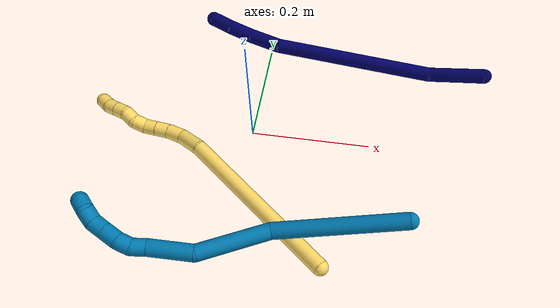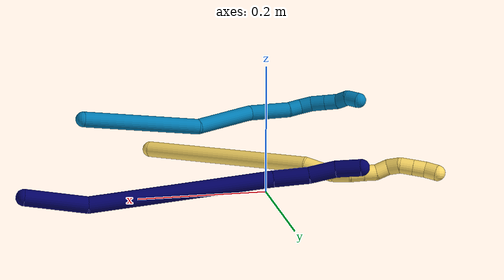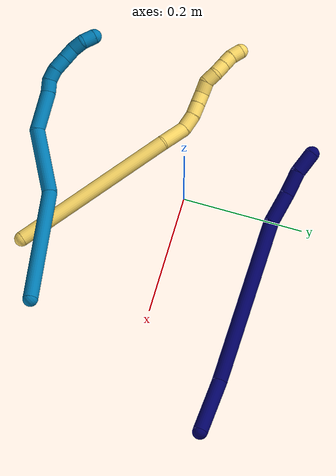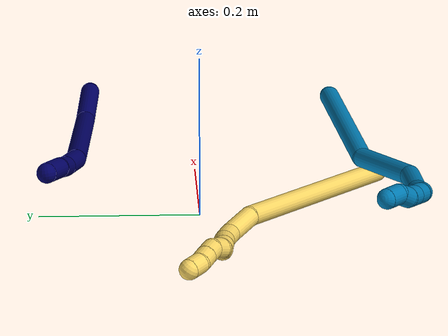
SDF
<sdf version="1.7">
 <world name="default">
  <model name="5">
   <static>0</static>
   <link name="5">
    <collision name="collision-cylinder-e_1_1_4">
     <pose>-0.10911 0.083126 0.032412 -1.19902 -0.885342 0.626605</pose>
     <geometry><cylinder><radius>0.0125</radius><length>0.28189</length></cylinder></geometry>
     <surface>
      <friction><ode><mu>1.16</mu><mu2>1.16</mu2><slip1>0</slip1><slip2>0</slip2></ode></friction>
      <contact><ode><kp>1e+06</kp><kd>1</kd><max_vel>0</max_vel><min_depth>0.001</min_depth></ode></contact>
     </surface>
    </collision>
    <visual name="visual-cylinder-e_1_1_4">
     <pose>-0.10911 0.083126 0.032412 -1.19902 -0.885342 0.626605</pose>
     <geometry><cylinder><radius>0.0125</radius><length>0.28189</length></cylinder></geometry>
     <material><ambient>1 0.858824 0.4 1</ambient></material>
    </visual>
    <collision name="collision-cylinder-e_2_4_5">
     <pose>-0.23211 0.181861 0.074274 -1.02636 -0.650648 0.375692</pose>
     <geometry><cylinder><radius>0.0125</radius><length>0.045864</length></cylinder></geometry>
     <surface>
      <friction><ode><mu>1.16</mu><mu2>1.16</mu2><slip1>0</slip1><slip2>0</slip2></ode></friction>
      <contact><ode><kp>1e+06</kp><kd>1</kd><max_vel>0</max_vel><min_depth>0.001</min_depth></ode></contact>
     </surface>
    </collision>
    <visual name="visual-cylinder-e_2_4_5">
     <pose>-0.23211 0.181861 0.074274 -1.02636 -0.650648 0.375692</pose>
     <geometry><cylinder><radius>0.0125</radius><length>0.045864</length></cylinder></geometry>
     <material><ambient>1 0.858824 0.4 1</ambient></material>
    </visual>
    <collision name="collision-cylinder-e_3_5_6">
     <pose>-0.25353 0.209138 0.084698 -1.48757 -0.571549 0.528035</pose>
     <geometry><cylinder><radius>0.0125</radius><length>0.027842</length></cylinder></geometry>
     <surface>
      <friction><ode><mu>1.16</mu><mu2>1.16</mu2><slip1>0</slip1><slip2>0</slip2></ode></friction>
      <contact><ode><kp>1e+06</kp><kd>1</kd><max_vel>0</max_vel><min_depth>0.001</min_depth></ode></contact>
     </surface>
    </collision>
    <visual name="visual-cylinder-e_3_5_6">
     <pose>-0.25353 0.209138 0.084698 -1.48757 -0.571549 0.528035</pose>
     <geometry><cylinder><radius>0.0125</radius><length>0.027842</length></cylinder></geometry>
     <material><ambient>1 0.858824 0.4 1</ambient></material>
    </visual>
    <collision name="collision-cylinder-e_4_6_7">
     <pose>-0.265589 0.230803 0.084804 -1.6573 -0.4239 0.460959</pose>
     <geometry><cylinder><radius>0.0125</radius><length>0.022018</length></cylinder></geometry>
     <surface>
      <friction><ode><mu>1.16</mu><mu2>1.16</mu2><slip1>0</slip1><slip2>0</slip2></ode></friction>
      <contact><ode><kp>1e+06</kp><kd>1</kd><max_vel>0</max_vel><min_depth>0.001</min_depth></ode></contact>
     </surface>
    </collision>
    <visual name="visual-cylinder-e_4_6_7">
     <pose>-0.265589 0.230803 0.084804 -1.6573 -0.4239 0.460959</pose>
     <geometry><cylinder><radius>0.0125</radius><length>0.022018</length></cylinder></geometry>
     <material><ambient>1 0.858824 0.4 1</ambient></material>
    </visual>
    <collision name="collision-cylinder-e_5_7_8">
     <pose>-0.274215 0.250033 0.083394 -1.62962 -0.417134 0.441632</pose>
     <geometry><cylinder><radius>0.0125</radius><length>0.020233</length></cylinder></geometry>
     <surface>
      <friction><ode><mu>1.16</mu><mu2>1.16</mu2><slip1>0</slip1><slip2>0</slip2></ode></friction>
      <contact><ode><kp>1e+06</kp><kd>1</kd><max_vel>0</max_vel><min_depth>0.001</min_depth></ode></contact>
     </surface>
    </collision>
    <visual name="visual-cylinder-e_5_7_8">
     <pose>-0.274215 0.250033 0.083394 -1.62962 -0.417134 0.441632</pose>
     <geometry><cylinder><radius>0.0125</radius><length>0.020233</length></cylinder></geometry>
     <material><ambient>1 0.858824 0.4 1</ambient></material>
    </visual>
    <collision name="collision-cylinder-e_6_8_9">
     <pose>-0.284268 0.267172 0.079095 -2.01422 -0.597374 0.906558</pose>
     <geometry><cylinder><radius>0.0125</radius><length>0.02117</length></cylinder></geometry>
     <surface>
      <friction><ode><mu>1.16</mu><mu2>1.16</mu2><slip1>0</slip1><slip2>0</slip2></ode></friction>
      <contact><ode><kp>1e+06</kp><kd>1</kd><max_vel>0</max_vel><min_depth>0.001</min_depth></ode></contact>
     </surface>
    </collision>
    <visual name="visual-cylinder-e_6_8_9">
     <pose>-0.284268 0.267172 0.079095 -2.01422 -0.597374 0.906558</pose>
     <geometry><cylinder><radius>0.0125</radius><length>0.02117</length></cylinder></geometry>
     <material><ambient>1 0.858824 0.4 1</ambient></material>
    </visual>
    <collision name="collision-cylinder-e_7_9_10">
     <pose>-0.298539 0.280983 0.075393 -1.56194 -0.953295 0.946088</pose>
     <geometry><cylinder><radius>0.0125</radius><length>0.020402</length></cylinder></geometry>
     <surface>
      <friction><ode><mu>1.16</mu><mu2>1.16</mu2><slip1>0</slip1><slip2>0</slip2></ode></friction>
      <contact><ode><kp>1e+06</kp><kd>1</kd><max_vel>0</max_vel><min_depth>0.001</min_depth></ode></contact>
     </surface>
    </collision>
    <visual name="visual-cylinder-e_7_9_10">
     <pose>-0.298539 0.280983 0.075393 -1.56194 -0.953295 0.946088</pose>
     <geometry><cylinder><radius>0.0125</radius><length>0.020402</length></cylinder></geometry>
     <material><ambient>1 0.858824 0.4 1</ambient></material>
    </visual>
    <collision name="collision-cylinder-e_8_10_11">
     <pose>-0.312499 0.295144 0.077757 -1.29776 -0.582165 0.446856</pose>
     <geometry><cylinder><radius>0.0125</radius><length>0.020526</length></cylinder></geometry>
     <surface>
      <friction><ode><mu>1.16</mu><mu2>1.16</mu2><slip1>0</slip1><slip2>0</slip2></ode></friction>
      <contact><ode><kp>1e+06</kp><kd>1</kd><max_vel>0</max_vel><min_depth>0.001</min_depth></ode></contact>
     </surface>
    </collision>
    <visual name="visual-cylinder-e_8_10_11">
     <pose>-0.312499 0.295144 0.077757 -1.29776 -0.582165 0.446856</pose>
     <geometry><cylinder><radius>0.0125</radius><length>0.020526</length></cylinder></geometry>
     <material><ambient>1 0.858824 0.4 1</ambient></material>
    </visual>
    <collision name="collision-cylinder-e_9_11_12">
     <pose>-0.323538 0.311515 0.082394 -1.29174 -0.568667 0.433619</pose>
     <geometry><cylinder><radius>0.0125</radius><length>0.020038</length></cylinder></geometry>
     <surface>
      <friction><ode><mu>1.16</mu><mu2>1.16</mu2><slip1>0</slip1><slip2>0</slip2></ode></friction>
      <contact><ode><kp>1e+06</kp><kd>1</kd><max_vel>0</max_vel><min_depth>0.001</min_depth></ode></contact>
     </surface>
    </collision>
    <visual name="visual-cylinder-e_9_11_12">
     <pose>-0.323538 0.311515 0.082394 -1.29174 -0.568667 0.433619</pose>
     <geometry><cylinder><radius>0.0125</radius><length>0.020038</length></cylinder></geometry>
     <material><ambient>1 0.858824 0.4 1</ambient></material>
    </visual>
    <collision name="collision-cylinder-e_10_12_2">
     <pose>-0.335865 0.325775 0.08851 -1.01795 -0.765115 0.441741</pose>
     <geometry><cylinder><radius>0.0125</radius><length>0.020016</length></cylinder></geometry>
     <surface>
      <friction><ode><mu>1.16</mu><mu2>1.16</mu2><slip1>0</slip1><slip2>0</slip2></ode></friction>
      <contact><ode><kp>1e+06</kp><kd>1</kd><max_vel>0</max_vel><min_depth>0.001</min_depth></ode></contact>
     </surface>
    </collision>
    <visual name="visual-cylinder-e_10_12_2">
     <pose>-0.335865 0.325775 0.08851 -1.01795 -0.765115 0.441741</pose>
     <geometry><cylinder><radius>0.0125</radius><length>0.020016</length></cylinder></geometry>
     <material><ambient>1 0.858824 0.4 1</ambient></material>
    </visual>
    <collision name="collision-sphere-2">
     <pose>-0.342797 0.331918 0.092301 0 -0 0</pose>
     <geometry><sphere><radius>0.0125</radius></sphere></geometry>
     <surface>
      <friction><ode><mu>1.16</mu><mu2>1.16</mu2><slip1>0</slip1><slip2>0</slip2></ode></friction>
      <contact><ode><kp>1e+06</kp><kd>1</kd><max_vel>0</max_vel><min_depth>0.001</min_depth></ode></contact>
     </surface>
    </collision>
    <visual name="visual-sphere-2">
     <pose>-0.342797 0.331918 0.092301 0 -0 0</pose>
     <geometry><sphere><radius>0.0125</radius></sphere></geometry>
     <material><ambient>1 0.858824 0.4 1</ambient></material>
    </visual>
    <collision name="collision-sphere-12">
     <pose>-0.328933 0.319631 0.084719 0 -0 0</pose>
     <geometry><sphere><radius>0.0125</radius></sphere></geometry>
     <surface>
      <friction><ode><mu>1.16</mu><mu2>1.16</mu2><slip1>0</slip1><slip2>0</slip2></ode></friction>
      <contact><ode><kp>1e+06</kp><kd>1</kd><max_vel>0</max_vel><min_depth>0.001</min_depth></ode></contact>
     </surface>
    </collision>
    <visual name="visual-sphere-12">
     <pose>-0.328933 0.319631 0.084719 0 -0 0</pose>
     <geometry><sphere><radius>0.0125</radius></sphere></geometry>
     <material><ambient>1 0.858824 0.4 1</ambient></material>
    </visual>
    <collision name="collision-sphere-11">
     <pose>-0.318142 0.3034 0.080068 0 -0 0</pose>
     <geometry><sphere><radius>0.0125</radius></sphere></geometry>
     <surface>
      <friction><ode><mu>1.16</mu><mu2>1.16</mu2><slip1>0</slip1><slip2>0</slip2></ode></friction>
      <contact><ode><kp>1e+06</kp><kd>1</kd><max_vel>0</max_vel><min_depth>0.001</min_depth></ode></contact>
     </surface>
    </collision>
    <visual name="visual-sphere-11">
     <pose>-0.318142 0.3034 0.080068 0 -0 0</pose>
     <geometry><sphere><radius>0.0125</radius></sphere></geometry>
     <material><ambient>1 0.858824 0.4 1</ambient></material>
    </visual>
    <collision name="collision-sphere-10">
     <pose>-0.306856 0.286889 0.075445 0 -0 0</pose>
     <geometry><sphere><radius>0.0125</radius></sphere></geometry>
     <surface>
      <friction><ode><mu>1.16</mu><mu2>1.16</mu2><slip1>0</slip1><slip2>0</slip2></ode></friction>
      <contact><ode><kp>1e+06</kp><kd>1</kd><max_vel>0</max_vel><min_depth>0.001</min_depth></ode></contact>
     </surface>
    </collision>
    <visual name="visual-sphere-10">
     <pose>-0.306856 0.286889 0.075445 0 -0 0</pose>
     <geometry><sphere><radius>0.0125</radius></sphere></geometry>
     <material><ambient>1 0.858824 0.4 1</ambient></material>
    </visual>
    <collision name="collision-sphere-9">
     <pose>-0.290221 0.275077 0.07534 0 -0 0</pose>
     <geometry><sphere><radius>0.0125</radius></sphere></geometry>
     <surface>
      <friction><ode><mu>1.16</mu><mu2>1.16</mu2><slip1>0</slip1><slip2>0</slip2></ode></friction>
      <contact><ode><kp>1e+06</kp><kd>1</kd><max_vel>0</max_vel><min_depth>0.001</min_depth></ode></contact>
     </surface>
    </collision>
    <visual name="visual-sphere-9">
     <pose>-0.290221 0.275077 0.07534 0 -0 0</pose>
     <geometry><sphere><radius>0.0125</radius></sphere></geometry>
     <material><ambient>1 0.858824 0.4 1</ambient></material>
    </visual>
    <collision name="collision-sphere-4">
     <pose>-0.21822 0.166253 0.064823 0 -0 0</pose>
     <geometry><sphere><radius>0.0125</radius></sphere></geometry>
     <surface>
      <friction><ode><mu>1.16</mu><mu2>1.16</mu2><slip1>0</slip1><slip2>0</slip2></ode></friction>
      <contact><ode><kp>1e+06</kp><kd>1</kd><max_vel>0</max_vel><min_depth>0.001</min_depth></ode></contact>
     </surface>
    </collision>
    <visual name="visual-sphere-4">
     <pose>-0.21822 0.166253 0.064823 0 -0 0</pose>
     <geometry><sphere><radius>0.0125</radius></sphere></geometry>
     <material><ambient>1 0.858824 0.4 1</ambient></material>
    </visual>
    <collision name="collision-sphere-1">
     <geometry><sphere><radius>0.0125</radius></sphere></geometry>
     <surface>
      <friction><ode><mu>1.16</mu><mu2>1.16</mu2><slip1>0</slip1><slip2>0</slip2></ode></friction>
      <contact><ode><kp>1e+06</kp><kd>1</kd><max_vel>0</max_vel><min_depth>0.001</min_depth></ode></contact>
     </surface>
    </collision>
    <visual name="visual-sphere-1">
     <geometry><sphere><radius>0.0125</radius></sphere></geometry>
     <material><ambient>1 0.858824 0.4 1</ambient></material>
    </visual>
    <collision name="collision-sphere-8">
     <pose>-0.278314 0.259266 0.08285 0 -0 0</pose>
     <geometry><sphere><radius>0.0125</radius></sphere></geometry>
     <surface>
      <friction><ode><mu>1.16</mu><mu2>1.16</mu2><slip1>0</slip1><slip2>0</slip2></ode></friction>
      <contact><ode><kp>1e+06</kp><kd>1</kd><max_vel>0</max_vel><min_depth>0.001</min_depth></ode></contact>
     </surface>
    </collision>
    <visual name="visual-sphere-8">
     <pose>-0.278314 0.259266 0.08285 0 -0 0</pose>
     <geometry><sphere><radius>0.0125</radius></sphere></geometry>
     <material><ambient>1 0.858824 0.4 1</ambient></material>
    </visual>
    <collision name="collision-sphere-5">
     <pose>-0.246 0.19747 0.083725 0 -0 0</pose>
     <geometry><sphere><radius>0.0125</radius></sphere></geometry>
     <surface>
      <friction><ode><mu>1.16</mu><mu2>1.16</mu2><slip1>0</slip1><slip2>0</slip2></ode></friction>
      <contact><ode><kp>1e+06</kp><kd>1</kd><max_vel>0</max_vel><min_depth>0.001</min_depth></ode></contact>
     </surface>
    </collision>
    <visual name="visual-sphere-5">
     <pose>-0.246 0.19747 0.083725 0 -0 0</pose>
     <geometry><sphere><radius>0.0125</radius></sphere></geometry>
     <material><ambient>1 0.858824 0.4 1</ambient></material>
    </visual>
    <collision name="collision-sphere-6">
     <pose>-0.26106 0.220806 0.085671 0 -0 0</pose>
     <geometry><sphere><radius>0.0125</radius></sphere></geometry>
     <surface>
      <friction><ode><mu>1.16</mu><mu2>1.16</mu2><slip1>0</slip1><slip2>0</slip2></ode></friction>
      <contact><ode><kp>1e+06</kp><kd>1</kd><max_vel>0</max_vel><min_depth>0.001</min_depth></ode></contact>
     </surface>
    </collision>
    <visual name="visual-sphere-6">
     <pose>-0.26106 0.220806 0.085671 0 -0 0</pose>
     <geometry><sphere><radius>0.0125</radius></sphere></geometry>
     <material><ambient>1 0.858824 0.4 1</ambient></material>
    </visual>
    <collision name="collision-sphere-7">
     <pose>-0.270117 0.2408 0.083937 0 -0 0</pose>
     <geometry><sphere><radius>0.0125</radius></sphere></geometry>
     <surface>
      <friction><ode><mu>1.16</mu><mu2>1.16</mu2><slip1>0</slip1><slip2>0</slip2></ode></friction>
      <contact><ode><kp>1e+06</kp><kd>1</kd><max_vel>0</max_vel><min_depth>0.001</min_depth></ode></contact>
     </surface>
    </collision>
    <visual name="visual-sphere-7">
     <pose>-0.270117 0.2408 0.083937 0 -0 0</pose>
     <geometry><sphere><radius>0.0125</radius></sphere></geometry>
     <material><ambient>1 0.858824 0.4 1</ambient></material>
    </visual>
    <inertial>
     <pose>-0.183173 0.155894 0.053374 0 -0 0</pose>
     <mass>0.5</mass>
     <inertia><ixx>0.001658</ixx><ixy>0</ixy><ixz>0</ixz><iyy>0.00209</iyy><iyz>0</iyz><izz>0.00035</izz></inertia>
    </inertial>
   </link>
   <pose>0.143359 -0.233572 0.011498 -2.87127 0.499623 -1.20209</pose>
  </model>
  <model name="7">
   <static>0</static>
   <link name="7">
    <collision name="collision-cylinder-e_1_1_4">
     <pose>-0.043847 -0.000308 -0.016644 3.12307 -1.20795 -3.11475</pose>
     <geometry><cylinder><radius>0.0125</radius><length>0.093802</length></cylinder></geometry>
     <surface>
      <friction><ode><mu>1.16</mu><mu2>1.16</mu2><slip1>0</slip1><slip2>0</slip2></ode></friction>
      <contact><ode><kp>1e+06</kp><kd>1</kd><max_vel>0</max_vel><min_depth>0.001</min_depth></ode></contact>
     </surface>
    </collision>
    <visual name="visual-cylinder-e_1_1_4">
     <pose>-0.043847 -0.000308 -0.016644 3.12307 -1.20795 -3.11475</pose>
     <geometry><cylinder><radius>0.0125</radius><length>0.093802</length></cylinder></geometry>
     <material><ambient>0.003922 0 0.403922 1</ambient></material>
    </visual>
    <collision name="collision-cylinder-e_2_4_5">
     <pose>-0.223691 -0.011566 -0.048712 2.52427 -1.4326 -2.4394</pose>
     <geometry><cylinder><radius>0.0125</radius><length>0.274611</length></cylinder></geometry>
     <surface>
      <friction><ode><mu>1.16</mu><mu2>1.16</mu2><slip1>0</slip1><slip2>0</slip2></ode></friction>
      <contact><ode><kp>1e+06</kp><kd>1</kd><max_vel>0</max_vel><min_depth>0.001</min_depth></ode></contact>
     </surface>
    </collision>
    <visual name="visual-cylinder-e_2_4_5">
     <pose>-0.223691 -0.011566 -0.048712 2.52427 -1.4326 -2.4394</pose>
     <geometry><cylinder><radius>0.0125</radius><length>0.274611</length></cylinder></geometry>
     <material><ambient>0.003922 0 0.403922 1</ambient></material>
    </visual>
    <collision name="collision-cylinder-e_3_5_6">
     <pose>-0.386155 -0.019599 -0.065764 -2.0798 -1.44529 1.96672</pose>
     <geometry><cylinder><radius>0.0125</radius><length>0.053354</length></cylinder></geometry>
     <surface>
      <friction><ode><mu>1.16</mu><mu2>1.16</mu2><slip1>0</slip1><slip2>0</slip2></ode></friction>
      <contact><ode><kp>1e+06</kp><kd>1</kd><max_vel>0</max_vel><min_depth>0.001</min_depth></ode></contact>
     </surface>
    </collision>
    <visual name="visual-cylinder-e_3_5_6">
     <pose>-0.386155 -0.019599 -0.065764 -2.0798 -1.44529 1.96672</pose>
     <geometry><cylinder><radius>0.0125</radius><length>0.053354</length></cylinder></geometry>
     <material><ambient>0.003922 0 0.403922 1</ambient></material>
    </visual>
    <collision name="collision-cylinder-e_4_6_7">
     <pose>-0.432507 -0.015714 -0.066357 -0.75296 -1.49966 0.705536</pose>
     <geometry><cylinder><radius>0.0125</radius><length>0.03987</length></cylinder></geometry>
     <surface>
      <friction><ode><mu>1.16</mu><mu2>1.16</mu2><slip1>0</slip1><slip2>0</slip2></ode></friction>
      <contact><ode><kp>1e+06</kp><kd>1</kd><max_vel>0</max_vel><min_depth>0.001</min_depth></ode></contact>
     </surface>
    </collision>
    <visual name="visual-cylinder-e_4_6_7">
     <pose>-0.432507 -0.015714 -0.066357 -0.75296 -1.49966 0.705536</pose>
     <geometry><cylinder><radius>0.0125</radius><length>0.03987</length></cylinder></geometry>
     <material><ambient>0.003922 0 0.403922 1</ambient></material>
    </visual>
    <collision name="collision-cylinder-e_5_7_2">
     <pose>-0.470938 -0.009915 -0.066108 -1.73179 -1.31282 1.47176</pose>
     <geometry><cylinder><radius>0.0125</radius><length>0.038362</length></cylinder></geometry>
     <surface>
      <friction><ode><mu>1.16</mu><mu2>1.16</mu2><slip1>0</slip1><slip2>0</slip2></ode></friction>
      <contact><ode><kp>1e+06</kp><kd>1</kd><max_vel>0</max_vel><min_depth>0.001</min_depth></ode></contact>
     </surface>
    </collision>
    <visual name="visual-cylinder-e_5_7_2">
     <pose>-0.470938 -0.009915 -0.066108 -1.73179 -1.31282 1.47176</pose>
     <geometry><cylinder><radius>0.0125</radius><length>0.038362</length></cylinder></geometry>
     <material><ambient>0.003922 0 0.403922 1</ambient></material>
    </visual>
    <collision name="collision-sphere-2">
     <pose>-0.489484 -0.005084 -0.066892 0 -0 0</pose>
     <geometry><sphere><radius>0.0125</radius></sphere></geometry>
     <surface>
      <friction><ode><mu>1.16</mu><mu2>1.16</mu2><slip1>0</slip1><slip2>0</slip2></ode></friction>
      <contact><ode><kp>1e+06</kp><kd>1</kd><max_vel>0</max_vel><min_depth>0.001</min_depth></ode></contact>
     </surface>
    </collision>
    <visual name="visual-sphere-2">
     <pose>-0.489484 -0.005084 -0.066892 0 -0 0</pose>
     <geometry><sphere><radius>0.0125</radius></sphere></geometry>
     <material><ambient>0.003922 0 0.403922 1</ambient></material>
    </visual>
    <collision name="collision-sphere-7">
     <pose>-0.452392 -0.014745 -0.065323 0 -0 0</pose>
     <geometry><sphere><radius>0.0125</radius></sphere></geometry>
     <surface>
      <friction><ode><mu>1.16</mu><mu2>1.16</mu2><slip1>0</slip1><slip2>0</slip2></ode></friction>
      <contact><ode><kp>1e+06</kp><kd>1</kd><max_vel>0</max_vel><min_depth>0.001</min_depth></ode></contact>
     </surface>
    </collision>
    <visual name="visual-sphere-7">
     <pose>-0.452392 -0.014745 -0.065323 0 -0 0</pose>
     <geometry><sphere><radius>0.0125</radius></sphere></geometry>
     <material><ambient>0.003922 0 0.403922 1</ambient></material>
    </visual>
    <collision name="collision-sphere-6">
     <pose>-0.412622 -0.016683 -0.067391 0 -0 0</pose>
     <geometry><sphere><radius>0.0125</radius></sphere></geometry>
     <surface>
      <friction><ode><mu>1.16</mu><mu2>1.16</mu2><slip1>0</slip1><slip2>0</slip2></ode></friction>
      <contact><ode><kp>1e+06</kp><kd>1</kd><max_vel>0</max_vel><min_depth>0.001</min_depth></ode></contact>
     </surface>
    </collision>
    <visual name="visual-sphere-6">
     <pose>-0.412622 -0.016683 -0.067391 0 -0 0</pose>
     <geometry><sphere><radius>0.0125</radius></sphere></geometry>
     <material><ambient>0.003922 0 0.403922 1</ambient></material>
    </visual>
    <collision name="collision-sphere-5">
     <pose>-0.359688 -0.022515 -0.064136 0 -0 0</pose>
     <geometry><sphere><radius>0.0125</radius></sphere></geometry>
     <surface>
      <friction><ode><mu>1.16</mu><mu2>1.16</mu2><slip1>0</slip1><slip2>0</slip2></ode></friction>
      <contact><ode><kp>1e+06</kp><kd>1</kd><max_vel>0</max_vel><min_depth>0.001</min_depth></ode></contact>
     </surface>
    </collision>
    <visual name="visual-sphere-5">
     <pose>-0.359688 -0.022515 -0.064136 0 -0 0</pose>
     <geometry><sphere><radius>0.0125</radius></sphere></geometry>
     <material><ambient>0.003922 0 0.403922 1</ambient></material>
    </visual>
    <collision name="collision-sphere-1">
     <geometry><sphere><radius>0.0125</radius></sphere></geometry>
     <surface>
      <friction><ode><mu>1.16</mu><mu2>1.16</mu2><slip1>0</slip1><slip2>0</slip2></ode></friction>
      <contact><ode><kp>1e+06</kp><kd>1</kd><max_vel>0</max_vel><min_depth>0.001</min_depth></ode></contact>
     </surface>
    </collision>
    <visual name="visual-sphere-1">
     <geometry><sphere><radius>0.0125</radius></sphere></geometry>
     <material><ambient>0.003922 0 0.403922 1</ambient></material>
    </visual>
    <collision name="collision-sphere-4">
     <pose>-0.087695 -0.000617 -0.033288 0 -0 0</pose>
     <geometry><sphere><radius>0.0125</radius></sphere></geometry>
     <surface>
      <friction><ode><mu>1.16</mu><mu2>1.16</mu2><slip1>0</slip1><slip2>0</slip2></ode></friction>
      <contact><ode><kp>1e+06</kp><kd>1</kd><max_vel>0</max_vel><min_depth>0.001</min_depth></ode></contact>
     </surface>
    </collision>
    <visual name="visual-sphere-4">
     <pose>-0.087695 -0.000617 -0.033288 0 -0 0</pose>
     <geometry><sphere><radius>0.0125</radius></sphere></geometry>
     <material><ambient>0.003922 0 0.403922 1</ambient></material>
    </visual>
    <inertial>
     <pose>-0.242909 -0.010515 -0.047257 0 -0 0</pose>
     <mass>0.5</mass>
     <inertia>
      <ixx>-0.000398</ixx>
      <ixy>0</ixy>
      <ixz>0</ixz>
      <iyy>0.001672</iyy>
      <iyz>0</iyz>
      <izz>0.001945</izz>
     </inertia>
    </inertial>
   </link>
   <pose>0.388159 0.138282 0.057347 -0.157394 0.192461 -0.128473</pose>
  </model>
  <model name="9">
   <static>0</static>
   <link name="9">
    <collision name="collision-cylinder-e_1_1_4">
     <pose>-0.069977 0.011776 -0.067396 -2.96861 -0.796667 2.73519</pose>
     <geometry><cylinder><radius>0.0125</radius><length>0.195731</length></cylinder></geometry>
     <surface>
      <friction><ode><mu>1.16</mu><mu2>1.16</mu2><slip1>0</slip1><slip2>0</slip2></ode></friction>
      <contact><ode><kp>1e+06</kp><kd>1</kd><max_vel>0</max_vel><min_depth>0.001</min_depth></ode></contact>
     </surface>
    </collision>
    <visual name="visual-cylinder-e_1_1_4">
     <pose>-0.069977 0.011776 -0.067396 -2.96861 -0.796667 2.73519</pose>
     <geometry><cylinder><radius>0.0125</radius><length>0.195731</length></cylinder></geometry>
     <material><ambient>0 0.490196 0.709804 1</ambient></material>
    </visual>
    <collision name="collision-cylinder-e_2_4_5">
     <pose>-0.180846 0.048202 -0.161286 -2.39225 -0.846369 1.70608</pose>
     <geometry><cylinder><radius>0.0125</radius><length>0.109211</length></cylinder></geometry>
     <surface>
      <friction><ode><mu>1.16</mu><mu2>1.16</mu2><slip1>0</slip1><slip2>0</slip2></ode></friction>
      <contact><ode><kp>1e+06</kp><kd>1</kd><max_vel>0</max_vel><min_depth>0.001</min_depth></ode></contact>
     </surface>
    </collision>
    <visual name="visual-cylinder-e_2_4_5">
     <pose>-0.180846 0.048202 -0.161286 -2.39225 -0.846369 1.70608</pose>
     <geometry><cylinder><radius>0.0125</radius><length>0.109211</length></cylinder></geometry>
     <material><ambient>0 0.490196 0.709804 1</ambient></material>
    </visual>
    <collision name="collision-cylinder-e_3_5_6">
     <pose>-0.240523 0.079452 -0.214912 -2.90293 -0.592162 2.39258</pose>
     <geometry><cylinder><radius>0.0125</radius><length>0.067307</length></cylinder></geometry>
     <surface>
      <friction><ode><mu>1.16</mu><mu2>1.16</mu2><slip1>0</slip1><slip2>0</slip2></ode></friction>
      <contact><ode><kp>1e+06</kp><kd>1</kd><max_vel>0</max_vel><min_depth>0.001</min_depth></ode></contact>
     </surface>
    </collision>
    <visual name="visual-cylinder-e_3_5_6">
     <pose>-0.240523 0.079452 -0.214912 -2.90293 -0.592162 2.39258</pose>
     <geometry><cylinder><radius>0.0125</radius><length>0.067307</length></cylinder></geometry>
     <material><ambient>0 0.490196 0.709804 1</ambient></material>
    </visual>
    <collision name="collision-cylinder-e_4_6_7">
     <pose>-0.265315 0.090234 -0.249877 -2.65135 -0.594864 1.77264</pose>
     <geometry><cylinder><radius>0.0125</radius><length>0.021442</length></cylinder></geometry>
     <surface>
      <friction><ode><mu>1.16</mu><mu2>1.16</mu2><slip1>0</slip1><slip2>0</slip2></ode></friction>
      <contact><ode><kp>1e+06</kp><kd>1</kd><max_vel>0</max_vel><min_depth>0.001</min_depth></ode></contact>
     </surface>
    </collision>
    <visual name="visual-cylinder-e_4_6_7">
     <pose>-0.265315 0.090234 -0.249877 -2.65135 -0.594864 1.77264</pose>
     <geometry><cylinder><radius>0.0125</radius><length>0.021442</length></cylinder></geometry>
     <material><ambient>0 0.490196 0.709804 1</ambient></material>
    </visual>
    <collision name="collision-cylinder-e_5_7_8">
     <pose>-0.273888 0.096734 -0.267117 -2.89986 -0.25886 1.63991</pose>
     <geometry><cylinder><radius>0.0125</radius><length>0.020043</length></cylinder></geometry>
     <surface>
      <friction><ode><mu>1.16</mu><mu2>1.16</mu2><slip1>0</slip1><slip2>0</slip2></ode></friction>
      <contact><ode><kp>1e+06</kp><kd>1</kd><max_vel>0</max_vel><min_depth>0.001</min_depth></ode></contact>
     </surface>
    </collision>
    <visual name="visual-cylinder-e_5_7_8">
     <pose>-0.273888 0.096734 -0.267117 -2.89986 -0.25886 1.63991</pose>
     <geometry><cylinder><radius>0.0125</radius><length>0.020043</length></cylinder></geometry>
     <material><ambient>0 0.490196 0.709804 1</ambient></material>
    </visual>
    <collision name="collision-cylinder-e_6_8_9">
     <pose>-0.278241 0.099224 -0.288267 -3.1271 -0.151075 2.95067</pose>
     <geometry><cylinder><radius>0.0125</radius><length>0.023761</length></cylinder></geometry>
     <surface>
      <friction><ode><mu>1.16</mu><mu2>1.16</mu2><slip1>0</slip1><slip2>0</slip2></ode></friction>
      <contact><ode><kp>1e+06</kp><kd>1</kd><max_vel>0</max_vel><min_depth>0.001</min_depth></ode></contact>
     </surface>
    </collision>
    <visual name="visual-cylinder-e_6_8_9">
     <pose>-0.278241 0.099224 -0.288267 -3.1271 -0.151075 2.95067</pose>
     <geometry><cylinder><radius>0.0125</radius><length>0.023761</length></cylinder></geometry>
     <material><ambient>0 0.490196 0.709804 1</ambient></material>
    </visual>
    <collision name="collision-cylinder-e_7_9_10">
     <pose>-0.281631 0.099575 -0.310568 -3.12438 -0.150507 2.91429</pose>
     <geometry><cylinder><radius>0.0125</radius><length>0.021359</length></cylinder></geometry>
     <surface>
      <friction><ode><mu>1.16</mu><mu2>1.16</mu2><slip1>0</slip1><slip2>0</slip2></ode></friction>
      <contact><ode><kp>1e+06</kp><kd>1</kd><max_vel>0</max_vel><min_depth>0.001</min_depth></ode></contact>
     </surface>
    </collision>
    <visual name="visual-cylinder-e_7_9_10">
     <pose>-0.281631 0.099575 -0.310568 -3.12438 -0.150507 2.91429</pose>
     <geometry><cylinder><radius>0.0125</radius><length>0.021359</length></cylinder></geometry>
     <material><ambient>0 0.490196 0.709804 1</ambient></material>
    </visual>
    <collision name="collision-cylinder-e_8_10_11">
     <pose>-0.280885 0.100637 -0.330842 -3.05126 0.236064 -2.41329</pose>
     <geometry><cylinder><radius>0.0125</radius><length>0.020069</length></cylinder></geometry>
     <surface>
      <friction><ode><mu>1.16</mu><mu2>1.16</mu2><slip1>0</slip1><slip2>0</slip2></ode></friction>
      <contact><ode><kp>1e+06</kp><kd>1</kd><max_vel>0</max_vel><min_depth>0.001</min_depth></ode></contact>
     </surface>
    </collision>
    <visual name="visual-cylinder-e_8_10_11">
     <pose>-0.280885 0.100637 -0.330842 -3.05126 0.236064 -2.41329</pose>
     <geometry><cylinder><radius>0.0125</radius><length>0.020069</length></cylinder></geometry>
     <material><ambient>0 0.490196 0.709804 1</ambient></material>
    </visual>
    <collision name="collision-cylinder-e_9_11_2">
     <pose>-0.278347 0.097778 -0.350409 2.77875 0.01812 0.098703</pose>
     <geometry><cylinder><radius>0.0125</radius><length>0.021077</length></cylinder></geometry>
     <surface>
      <friction><ode><mu>1.16</mu><mu2>1.16</mu2><slip1>0</slip1><slip2>0</slip2></ode></friction>
      <contact><ode><kp>1e+06</kp><kd>1</kd><max_vel>0</max_vel><min_depth>0.001</min_depth></ode></contact>
     </surface>
    </collision>
    <visual name="visual-cylinder-e_9_11_2">
     <pose>-0.278347 0.097778 -0.350409 2.77875 0.01812 0.098703</pose>
     <geometry><cylinder><radius>0.0125</radius><length>0.021077</length></cylinder></geometry>
     <material><ambient>0 0.490196 0.709804 1</ambient></material>
    </visual>
    <collision name="collision-sphere-2">
     <pose>-0.278156 0.094038 -0.36026 0 -0 0</pose>
     <geometry><sphere><radius>0.0125</radius></sphere></geometry>
     <surface>
      <friction><ode><mu>1.16</mu><mu2>1.16</mu2><slip1>0</slip1><slip2>0</slip2></ode></friction>
      <contact><ode><kp>1e+06</kp><kd>1</kd><max_vel>0</max_vel><min_depth>0.001</min_depth></ode></contact>
     </surface>
    </collision>
    <visual name="visual-sphere-2">
     <pose>-0.278156 0.094038 -0.36026 0 -0 0</pose>
     <geometry><sphere><radius>0.0125</radius></sphere></geometry>
     <material><ambient>0 0.490196 0.709804 1</ambient></material>
    </visual>
    <collision name="collision-sphere-11">
     <pose>-0.278538 0.101517 -0.340559 0 -0 0</pose>
     <geometry><sphere><radius>0.0125</radius></sphere></geometry>
     <surface>
      <friction><ode><mu>1.16</mu><mu2>1.16</mu2><slip1>0</slip1><slip2>0</slip2></ode></friction>
      <contact><ode><kp>1e+06</kp><kd>1</kd><max_vel>0</max_vel><min_depth>0.001</min_depth></ode></contact>
     </surface>
    </collision>
    <visual name="visual-sphere-11">
     <pose>-0.278538 0.101517 -0.340559 0 -0 0</pose>
     <geometry><sphere><radius>0.0125</radius></sphere></geometry>
     <material><ambient>0 0.490196 0.709804 1</ambient></material>
    </visual>
    <collision name="collision-sphere-10">
     <pose>-0.283232 0.099757 -0.321125 0 -0 0</pose>
     <geometry><sphere><radius>0.0125</radius></sphere></geometry>
     <surface>
      <friction><ode><mu>1.16</mu><mu2>1.16</mu2><slip1>0</slip1><slip2>0</slip2></ode></friction>
      <contact><ode><kp>1e+06</kp><kd>1</kd><max_vel>0</max_vel><min_depth>0.001</min_depth></ode></contact>
     </surface>
    </collision>
    <visual name="visual-sphere-10">
     <pose>-0.283232 0.099757 -0.321125 0 -0 0</pose>
     <geometry><sphere><radius>0.0125</radius></sphere></geometry>
     <material><ambient>0 0.490196 0.709804 1</ambient></material>
    </visual>
    <collision name="collision-sphere-9">
     <pose>-0.280029 0.099394 -0.300011 0 -0 0</pose>
     <geometry><sphere><radius>0.0125</radius></sphere></geometry>
     <surface>
      <friction><ode><mu>1.16</mu><mu2>1.16</mu2><slip1>0</slip1><slip2>0</slip2></ode></friction>
      <contact><ode><kp>1e+06</kp><kd>1</kd><max_vel>0</max_vel><min_depth>0.001</min_depth></ode></contact>
     </surface>
    </collision>
    <visual name="visual-sphere-9">
     <pose>-0.280029 0.099394 -0.300011 0 -0 0</pose>
     <geometry><sphere><radius>0.0125</radius></sphere></geometry>
     <material><ambient>0 0.490196 0.709804 1</ambient></material>
    </visual>
    <collision name="collision-sphere-4">
     <pose>-0.139953 0.023553 -0.134792 0 -0 0</pose>
     <geometry><sphere><radius>0.0125</radius></sphere></geometry>
     <surface>
      <friction><ode><mu>1.16</mu><mu2>1.16</mu2><slip1>0</slip1><slip2>0</slip2></ode></friction>
      <contact><ode><kp>1e+06</kp><kd>1</kd><max_vel>0</max_vel><min_depth>0.001</min_depth></ode></contact>
     </surface>
    </collision>
    <visual name="visual-sphere-4">
     <pose>-0.139953 0.023553 -0.134792 0 -0 0</pose>
     <geometry><sphere><radius>0.0125</radius></sphere></geometry>
     <material><ambient>0 0.490196 0.709804 1</ambient></material>
    </visual>
    <collision name="collision-sphere-1">
     <geometry><sphere><radius>0.0125</radius></sphere></geometry>
     <surface>
      <friction><ode><mu>1.16</mu><mu2>1.16</mu2><slip1>0</slip1><slip2>0</slip2></ode></friction>
      <contact><ode><kp>1e+06</kp><kd>1</kd><max_vel>0</max_vel><min_depth>0.001</min_depth></ode></contact>
     </surface>
    </collision>
    <visual name="visual-sphere-1">
     <geometry><sphere><radius>0.0125</radius></sphere></geometry>
     <material><ambient>0 0.490196 0.709804 1</ambient></material>
    </visual>
    <collision name="collision-sphere-8">
     <pose>-0.276453 0.099053 -0.276523 0 -0 0</pose>
     <geometry><sphere><radius>0.0125</radius></sphere></geometry>
     <surface>
      <friction><ode><mu>1.16</mu><mu2>1.16</mu2><slip1>0</slip1><slip2>0</slip2></ode></friction>
      <contact><ode><kp>1e+06</kp><kd>1</kd><max_vel>0</max_vel><min_depth>0.001</min_depth></ode></contact>
     </surface>
    </collision>
    <visual name="visual-sphere-8">
     <pose>-0.276453 0.099053 -0.276523 0 -0 0</pose>
     <geometry><sphere><radius>0.0125</radius></sphere></geometry>
     <material><ambient>0 0.490196 0.709804 1</ambient></material>
    </visual>
    <collision name="collision-sphere-5">
     <pose>-0.221739 0.072851 -0.18778 0 -0 0</pose>
     <geometry><sphere><radius>0.0125</radius></sphere></geometry>
     <surface>
      <friction><ode><mu>1.16</mu><mu2>1.16</mu2><slip1>0</slip1><slip2>0</slip2></ode></friction>
      <contact><ode><kp>1e+06</kp><kd>1</kd><max_vel>0</max_vel><min_depth>0.001</min_depth></ode></contact>
     </surface>
    </collision>
    <visual name="visual-sphere-5">
     <pose>-0.221739 0.072851 -0.18778 0 -0 0</pose>
     <geometry><sphere><radius>0.0125</radius></sphere></geometry>
     <material><ambient>0 0.490196 0.709804 1</ambient></material>
    </visual>
    <collision name="collision-sphere-6">
     <pose>-0.259307 0.086054 -0.242044 0 -0 0</pose>
     <geometry><sphere><radius>0.0125</radius></sphere></geometry>
     <surface>
      <friction><ode><mu>1.16</mu><mu2>1.16</mu2><slip1>0</slip1><slip2>0</slip2></ode></friction>
      <contact><ode><kp>1e+06</kp><kd>1</kd><max_vel>0</max_vel><min_depth>0.001</min_depth></ode></contact>
     </surface>
    </collision>
    <visual name="visual-sphere-6">
     <pose>-0.259307 0.086054 -0.242044 0 -0 0</pose>
     <geometry><sphere><radius>0.0125</radius></sphere></geometry>
     <material><ambient>0 0.490196 0.709804 1</ambient></material>
    </visual>
    <collision name="collision-sphere-7">
     <pose>-0.271323 0.094415 -0.257711 0 -0 0</pose>
     <geometry><sphere><radius>0.0125</radius></sphere></geometry>
     <surface>
      <friction><ode><mu>1.16</mu><mu2>1.16</mu2><slip1>0</slip1><slip2>0</slip2></ode></friction>
      <contact><ode><kp>1e+06</kp><kd>1</kd><max_vel>0</max_vel><min_depth>0.001</min_depth></ode></contact>
     </surface>
    </collision>
    <visual name="visual-sphere-7">
     <pose>-0.271323 0.094415 -0.257711 0 -0 0</pose>
     <geometry><sphere><radius>0.0125</radius></sphere></geometry>
     <material><ambient>0 0.490196 0.709804 1</ambient></material>
    </visual>
    <inertial>
     <pose>-0.16989 0.050711 -0.166982 0 -0 0</pose>
     <mass>0.5</mass>
     <inertia>
      <ixx>-0.000191</ixx>
      <ixy>0</ixy>
      <ixz>0</ixz>
      <iyy>0.000973</iyy>
      <iyz>0</iyz>
      <izz>0.000393</izz>
     </inertia>
    </inertial>
   </link>
   <pose>0.259555 -0.180369 0.08271 1.85037 -0.602978 0.830269</pose>
  </model>
 </world>
</sdf>
